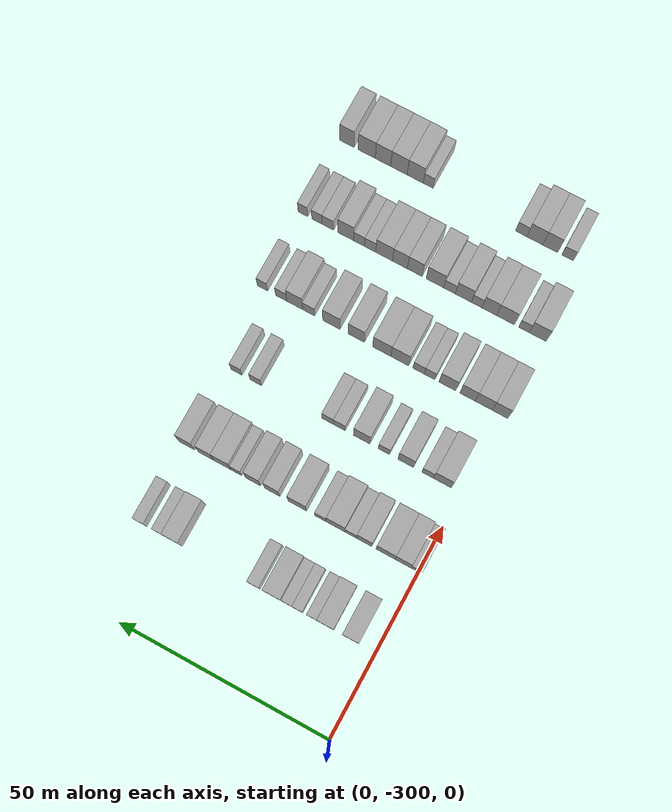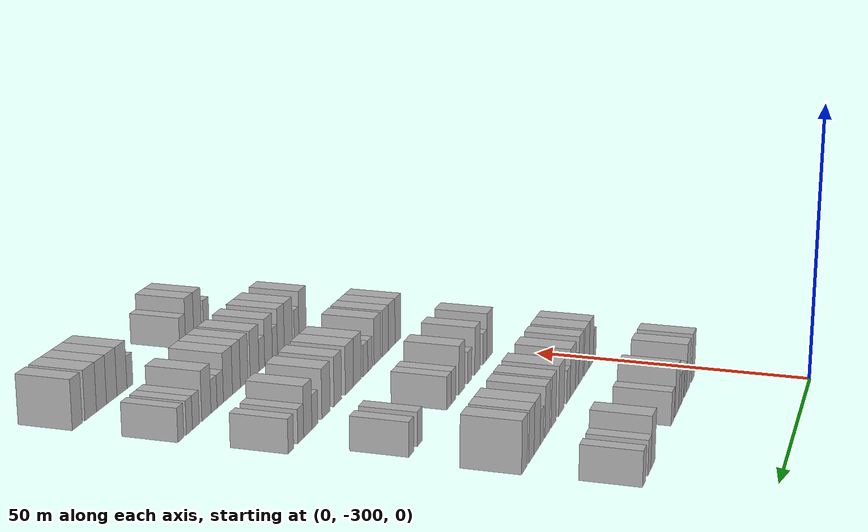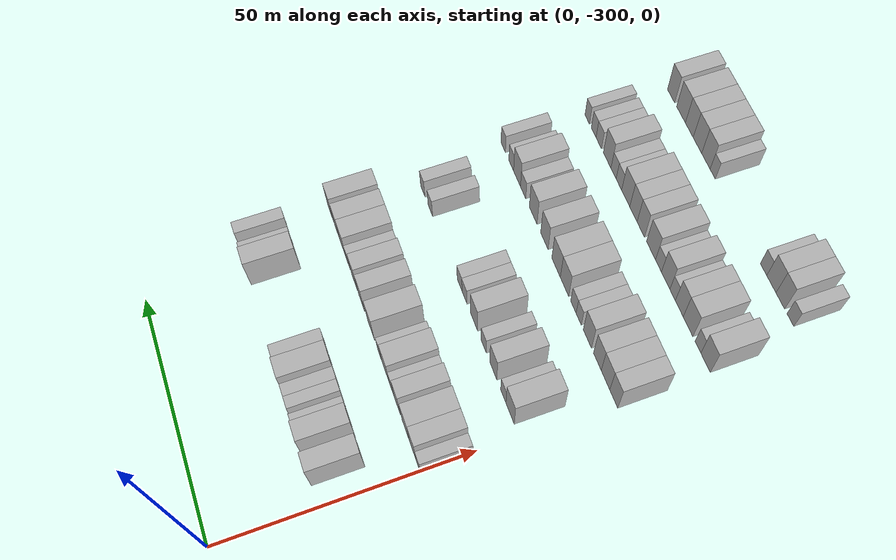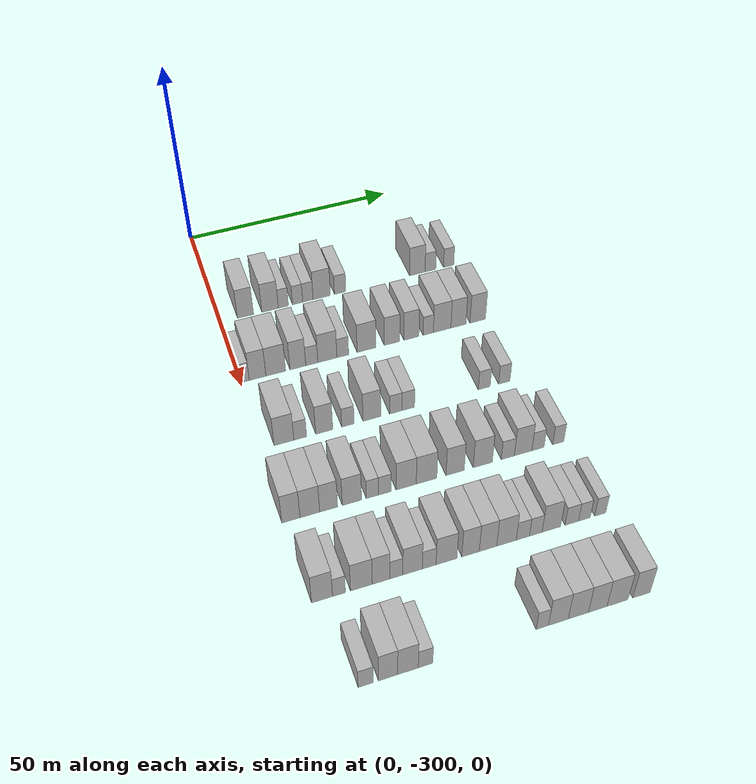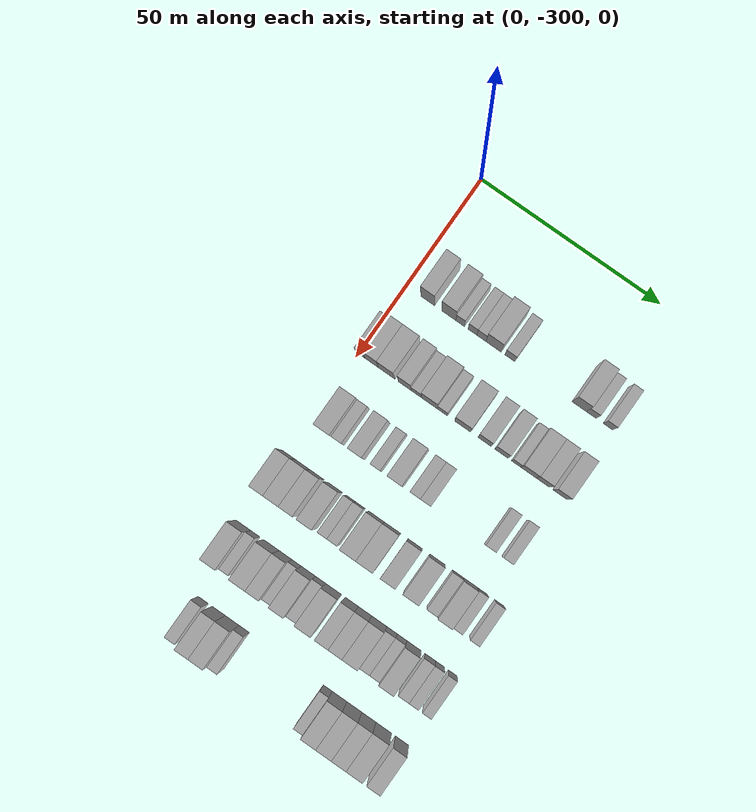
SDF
<sdf version="1.6">
 <world name="default">
  <model name="building_15">
   <static>1</static>
   <pose>25.0000 -294.0188 0 0.000000 0.000000 0.000000</pose>
   <link name="link">
    <pose>0 0 4.50 0 0 0</pose>
    <collision name="collision"><geometry><box><size>10.0000 3.7938 9.0000</size></box></geometry></collision>
    <visual name="visual">
     <cast_shadows>0</cast_shadows>
     <geometry><box><size>10.0000 3.7938 9.0000</size></box></geometry>
     <material>
      <script>
       <uri>model://HANNAS_wall/materials/scripts</uri>
       <uri>model://HANNAS_wall/materials/textures</uri>
       <name>vrc/HANNAS_wall</name>
      </script>
     </material>
    </visual>
   </link>
  </model>
  <model name="building_16">
   <static>1</static>
   <pose>25.0000 -288.1485 0 0.000000 0.000000 0.000000</pose>
   <link name="link">
    <pose>0 0 4.50 0 0 0</pose>
    <collision name="collision"><geometry><box><size>10.0000 3.9466 9.0000</size></box></geometry></collision>
    <visual name="visual">
     <cast_shadows>0</cast_shadows>
     <geometry><box><size>10.0000 3.9466 9.0000</size></box></geometry>
     <material>
      <script>
       <uri>model://HANNAS_wall/materials/scripts</uri>
       <uri>model://HANNAS_wall/materials/textures</uri>
       <name>vrc/HANNAS_wall</name>
      </script>
     </material>
    </visual>
   </link>
  </model>
  <model name="building_17">
   <static>1</static>
   <pose>25.0000 -284.9693 0 0.000000 0.000000 0.000000</pose>
   <link name="link">
    <pose>0 0 3.00 0 0 0</pose>
    <collision name="collision"><geometry><box><size>10.0000 2.4118 6.0000</size></box></geometry></collision>
    <visual name="visual">
     <cast_shadows>0</cast_shadows>
     <geometry><box><size>10.0000 2.4118 6.0000</size></box></geometry>
     <material>
      <script>
       <uri>model://HANNAS_wall/materials/scripts</uri>
       <uri>model://HANNAS_wall/materials/textures</uri>
       <name>vrc/HANNAS_wall</name>
      </script>
     </material>
    </visual>
   </link>
  </model>
  <model name="building_18">
   <static>1</static>
   <pose>25.0000 -281.5322 0 0.000000 0.000000 0.000000</pose>
   <link name="link">
    <pose>0 0 3.00 0 0 0</pose>
    <collision name="collision"><geometry><box><size>10.0000 2.4624 6.0000</size></box></geometry></collision>
    <visual name="visual">
     <cast_shadows>0</cast_shadows>
     <geometry><box><size>10.0000 2.4624 6.0000</size></box></geometry>
     <material>
      <script>
       <uri>model://HANNAS_wall/materials/scripts</uri>
       <uri>model://HANNAS_wall/materials/textures</uri>
       <name>vrc/HANNAS_wall</name>
      </script>
     </material>
    </visual>
   </link>
  </model>
  <model name="building_19">
   <static>1</static>
   <pose>25.0000 -279.0378 0 0.000000 0.000000 0.000000</pose>
   <link name="link">
    <pose>0 0 3.00 0 0 0</pose>
    <collision name="collision"><geometry><box><size>10.0000 2.5264 6.0000</size></box></geometry></collision>
    <visual name="visual">
     <cast_shadows>0</cast_shadows>
     <geometry><box><size>10.0000 2.5264 6.0000</size></box></geometry>
     <material>
      <script>
       <uri>model://HANNAS_wall/materials/scripts</uri>
       <uri>model://HANNAS_wall/materials/textures</uri>
       <name>vrc/HANNAS_wall</name>
      </script>
     </material>
    </visual>
   </link>
  </model>
  <model name="building_20">
   <static>1</static>
   <pose>25.0000 -275.6658 0 0.000000 0.000000 0.000000</pose>
   <link name="link">
    <pose>0 0 4.50 0 0 0</pose>
    <collision name="collision"><geometry><box><size>10.0000 4.2176 9.0000</size></box></geometry></collision>
    <visual name="visual">
     <cast_shadows>0</cast_shadows>
     <geometry><box><size>10.0000 4.2176 9.0000</size></box></geometry>
     <material>
      <script>
       <uri>model://HANNAS_wall/materials/scripts</uri>
       <uri>model://HANNAS_wall/materials/textures</uri>
       <name>vrc/HANNAS_wall</name>
      </script>
     </material>
    </visual>
   </link>
  </model>
  <model name="building_21">
   <static>1</static>
   <pose>25.0000 -271.1557 0 0.000000 0.000000 0.000000</pose>
   <link name="link">
    <pose>0 0 3.00 0 0 0</pose>
    <collision name="collision"><geometry><box><size>10.0000 2.8026 6.0000</size></box></geometry></collision>
    <visual name="visual">
     <cast_shadows>0</cast_shadows>
     <geometry><box><size>10.0000 2.8026 6.0000</size></box></geometry>
     <material>
      <script>
       <uri>model://HANNAS_wall/materials/scripts</uri>
       <uri>model://HANNAS_wall/materials/textures</uri>
       <name>vrc/HANNAS_wall</name>
      </script>
     </material>
    </visual>
   </link>
  </model>
  <model name="building_22">
   <static>1</static>
   <pose>25.0000 -251.8844 0 0.000000 0.000000 0.000000</pose>
   <link name="link">
    <pose>0 0 4.50 0 0 0</pose>
    <collision name="collision"><geometry><box><size>10.0000 3.9133 9.0000</size></box></geometry></collision>
    <visual name="visual">
     <cast_shadows>0</cast_shadows>
     <geometry><box><size>10.0000 3.9133 9.0000</size></box></geometry>
     <material>
      <script>
       <uri>model://HANNAS_wall/materials/scripts</uri>
       <uri>model://HANNAS_wall/materials/textures</uri>
       <name>vrc/HANNAS_wall</name>
      </script>
     </material>
    </visual>
   </link>
  </model>
  <model name="building_23">
   <static>1</static>
   <pose>25.0000 -248.5655 0 0.000000 0.000000 0.000000</pose>
   <link name="link">
    <pose>0 0 3.00 0 0 0</pose>
    <collision name="collision"><geometry><box><size>10.0000 2.7246 6.0000</size></box></geometry></collision>
    <visual name="visual">
     <cast_shadows>0</cast_shadows>
     <geometry><box><size>10.0000 2.7246 6.0000</size></box></geometry>
     <material>
      <script>
       <uri>model://HANNAS_wall/materials/scripts</uri>
       <uri>model://HANNAS_wall/materials/textures</uri>
       <name>vrc/HANNAS_wall</name>
      </script>
     </material>
    </visual>
   </link>
  </model>
  <model name="building_24">
   <static>1</static>
   <pose>25.0000 -243.8959 0 0.000000 0.000000 0.000000</pose>
   <link name="link">
    <pose>0 0 3.00 0 0 0</pose>
    <collision name="collision"><geometry><box><size>10.0000 2.6144 6.0000</size></box></geometry></collision>
    <visual name="visual">
     <cast_shadows>0</cast_shadows>
     <geometry><box><size>10.0000 2.6144 6.0000</size></box></geometry>
     <material>
      <script>
       <uri>model://HANNAS_wall/materials/scripts</uri>
       <uri>model://HANNAS_wall/materials/textures</uri>
       <name>vrc/HANNAS_wall</name>
      </script>
     </material>
    </visual>
   </link>
  </model>
  <model name="building_188">
   <static>1</static>
   <pose>44.0000 -299.3220 0 0.000000 0.000000 0.000000</pose>
   <link name="link">
    <pose>0 0 3.00 0 0 0</pose>
    <collision name="collision"><geometry><box><size>10.0000 2.5006 6.0000</size></box></geometry></collision>
    <visual name="visual">
     <cast_shadows>0</cast_shadows>
     <geometry><box><size>10.0000 2.5006 6.0000</size></box></geometry>
     <material>
      <script>
       <uri>model://HANNAS_wall/materials/scripts</uri>
       <uri>model://HANNAS_wall/materials/textures</uri>
       <name>vrc/HANNAS_wall</name>
      </script>
     </material>
    </visual>
   </link>
  </model>
  <model name="building_189">
   <static>1</static>
   <pose>44.0000 -296.1838 0 0.000000 0.000000 0.000000</pose>
   <link name="link">
    <pose>0 0 4.50 0 0 0</pose>
    <collision name="collision"><geometry><box><size>10.0000 3.7759 9.0000</size></box></geometry></collision>
    <visual name="visual">
     <cast_shadows>0</cast_shadows>
     <geometry><box><size>10.0000 3.7759 9.0000</size></box></geometry>
     <material>
      <script>
       <uri>model://HANNAS_wall/materials/scripts</uri>
       <uri>model://HANNAS_wall/materials/textures</uri>
       <name>vrc/HANNAS_wall</name>
      </script>
     </material>
    </visual>
   </link>
  </model>
  <model name="building_190">
   <static>1</static>
   <pose>44.0000 -292.0547 0 0.000000 0.000000 0.000000</pose>
   <link name="link">
    <pose>0 0 4.50 0 0 0</pose>
    <collision name="collision"><geometry><box><size>10.0000 4.4823 9.0000</size></box></geometry></collision>
    <visual name="visual">
     <cast_shadows>0</cast_shadows>
     <geometry><box><size>10.0000 4.4823 9.0000</size></box></geometry>
     <material>
      <script>
       <uri>model://HANNAS_wall/materials/scripts</uri>
       <uri>model://HANNAS_wall/materials/textures</uri>
       <name>vrc/HANNAS_wall</name>
      </script>
     </material>
    </visual>
   </link>
  </model>
  <model name="building_191">
   <static>1</static>
   <pose>44.0000 -286.9977 0 0.000000 0.000000 0.000000</pose>
   <link name="link">
    <pose>0 0 4.50 0 0 0</pose>
    <collision name="collision"><geometry><box><size>10.0000 3.6317 9.0000</size></box></geometry></collision>
    <visual name="visual">
     <cast_shadows>0</cast_shadows>
     <geometry><box><size>10.0000 3.6317 9.0000</size></box></geometry>
     <material>
      <script>
       <uri>model://HANNAS_wall/materials/scripts</uri>
       <uri>model://HANNAS_wall/materials/textures</uri>
       <name>vrc/HANNAS_wall</name>
      </script>
     </material>
    </visual>
   </link>
  </model>
  <model name="building_192">
   <static>1</static>
   <pose>44.0000 -283.7783 0 0.000000 0.000000 0.000000</pose>
   <link name="link">
    <pose>0 0 3.00 0 0 0</pose>
    <collision name="collision"><geometry><box><size>10.0000 2.8072 6.0000</size></box></geometry></collision>
    <visual name="visual">
     <cast_shadows>0</cast_shadows>
     <geometry><box><size>10.0000 2.8072 6.0000</size></box></geometry>
     <material>
      <script>
       <uri>model://HANNAS_wall/materials/scripts</uri>
       <uri>model://HANNAS_wall/materials/textures</uri>
       <name>vrc/HANNAS_wall</name>
      </script>
     </material>
    </visual>
   </link>
  </model>
  <model name="building_193">
   <static>1</static>
   <pose>44.0000 -280.1509 0 0.000000 0.000000 0.000000</pose>
   <link name="link">
    <pose>0 0 4.50 0 0 0</pose>
    <collision name="collision"><geometry><box><size>10.0000 4.4476 9.0000</size></box></geometry></collision>
    <visual name="visual">
     <cast_shadows>0</cast_shadows>
     <geometry><box><size>10.0000 4.4476 9.0000</size></box></geometry>
     <material>
      <script>
       <uri>model://HANNAS_wall/materials/scripts</uri>
       <uri>model://HANNAS_wall/materials/textures</uri>
       <name>vrc/HANNAS_wall</name>
      </script>
     </material>
    </visual>
   </link>
  </model>
  <model name="building_194">
   <static>1</static>
   <pose>44.0000 -276.5585 0 0.000000 0.000000 0.000000</pose>
   <link name="link">
    <pose>0 0 3.00 0 0 0</pose>
    <collision name="collision"><geometry><box><size>10.0000 2.7372 6.0000</size></box></geometry></collision>
    <visual name="visual">
     <cast_shadows>0</cast_shadows>
     <geometry><box><size>10.0000 2.7372 6.0000</size></box></geometry>
     <material>
      <script>
       <uri>model://HANNAS_wall/materials/scripts</uri>
       <uri>model://HANNAS_wall/materials/textures</uri>
       <name>vrc/HANNAS_wall</name>
      </script>
     </material>
    </visual>
   </link>
  </model>
  <model name="building_195">
   <static>1</static>
   <pose>44.0000 -270.9673 0 0.000000 0.000000 0.000000</pose>
   <link name="link">
    <pose>0 0 4.50 0 0 0</pose>
    <collision name="collision"><geometry><box><size>10.0000 4.4451 9.0000</size></box></geometry></collision>
    <visual name="visual">
     <cast_shadows>0</cast_shadows>
     <geometry><box><size>10.0000 4.4451 9.0000</size></box></geometry>
     <material>
      <script>
       <uri>model://HANNAS_wall/materials/scripts</uri>
       <uri>model://HANNAS_wall/materials/textures</uri>
       <name>vrc/HANNAS_wall</name>
      </script>
     </material>
    </visual>
   </link>
  </model>
  <model name="building_196">
   <static>1</static>
   <pose>44.0000 -264.9062 0 0.000000 0.000000 0.000000</pose>
   <link name="link">
    <pose>0 0 4.50 0 0 0</pose>
    <collision name="collision"><geometry><box><size>10.0000 3.6771 9.0000</size></box></geometry></collision>
    <visual name="visual">
     <cast_shadows>0</cast_shadows>
     <geometry><box><size>10.0000 3.6771 9.0000</size></box></geometry>
     <material>
      <script>
       <uri>model://HANNAS_wall/materials/scripts</uri>
       <uri>model://HANNAS_wall/materials/textures</uri>
       <name>vrc/HANNAS_wall</name>
      </script>
     </material>
    </visual>
   </link>
  </model>
  <model name="building_197">
   <static>1</static>
   <pose>44.0000 -260.2516 0 0.000000 0.000000 0.000000</pose>
   <link name="link">
    <pose>0 0 4.50 0 0 0</pose>
    <collision name="collision"><geometry><box><size>10.0000 3.6321 9.0000</size></box></geometry></collision>
    <visual name="visual">
     <cast_shadows>0</cast_shadows>
     <geometry><box><size>10.0000 3.6321 9.0000</size></box></geometry>
     <material>
      <script>
       <uri>model://HANNAS_wall/materials/scripts</uri>
       <uri>model://HANNAS_wall/materials/textures</uri>
       <name>vrc/HANNAS_wall</name>
      </script>
     </material>
    </visual>
   </link>
  </model>
  <model name="building_198">
   <static>1</static>
   <pose>44.0000 -256.1866 0 0.000000 0.000000 0.000000</pose>
   <link name="link">
    <pose>0 0 3.00 0 0 0</pose>
    <collision name="collision"><geometry><box><size>10.0000 2.4979 6.0000</size></box></geometry></collision>
    <visual name="visual">
     <cast_shadows>0</cast_shadows>
     <geometry><box><size>10.0000 2.4979 6.0000</size></box></geometry>
     <material>
      <script>
       <uri>model://HANNAS_wall/materials/scripts</uri>
       <uri>model://HANNAS_wall/materials/textures</uri>
       <name>vrc/HANNAS_wall</name>
      </script>
     </material>
    </visual>
   </link>
  </model>
  <model name="building_199">
   <static>1</static>
   <pose>44.0000 -252.8082 0 0.000000 0.000000 0.000000</pose>
   <link name="link">
    <pose>0 0 4.50 0 0 0</pose>
    <collision name="collision"><geometry><box><size>10.0000 4.2589 9.0000</size></box></geometry></collision>
    <visual name="visual">
     <cast_shadows>0</cast_shadows>
     <geometry><box><size>10.0000 4.2589 9.0000</size></box></geometry>
     <material>
      <script>
       <uri>model://HANNAS_wall/materials/scripts</uri>
       <uri>model://HANNAS_wall/materials/textures</uri>
       <name>vrc/HANNAS_wall</name>
      </script>
     </material>
    </visual>
   </link>
  </model>
  <model name="building_200">
   <static>1</static>
   <pose>44.0000 -248.8324 0 0.000000 0.000000 0.000000</pose>
   <link name="link">
    <pose>0 0 4.50 0 0 0</pose>
    <collision name="collision"><geometry><box><size>10.0000 3.6927 9.0000</size></box></geometry></collision>
    <visual name="visual">
     <cast_shadows>0</cast_shadows>
     <geometry><box><size>10.0000 3.6927 9.0000</size></box></geometry>
     <material>
      <script>
       <uri>model://HANNAS_wall/materials/scripts</uri>
       <uri>model://HANNAS_wall/materials/textures</uri>
       <name>vrc/HANNAS_wall</name>
      </script>
     </material>
    </visual>
   </link>
  </model>
  <model name="building_201">
   <static>1</static>
   <pose>44.0000 -244.0832 0 0.000000 0.000000 0.000000</pose>
   <link name="link">
    <pose>0 0 4.50 0 0 0</pose>
    <collision name="collision"><geometry><box><size>10.0000 3.8056 9.0000</size></box></geometry></collision>
    <visual name="visual">
     <cast_shadows>0</cast_shadows>
     <geometry><box><size>10.0000 3.8056 9.0000</size></box></geometry>
     <material>
      <script>
       <uri>model://HANNAS_wall/materials/scripts</uri>
       <uri>model://HANNAS_wall/materials/textures</uri>
       <name>vrc/HANNAS_wall</name>
      </script>
     </material>
    </visual>
   </link>
  </model>
  <model name="building_361">
   <static>1</static>
   <pose>63.0000 -295.5406 0 0.000000 0.000000 0.000000</pose>
   <link name="link">
    <pose>0 0 4.50 0 0 0</pose>
    <collision name="collision"><geometry><box><size>10.0000 4.2909 9.0000</size></box></geometry></collision>
    <visual name="visual">
     <cast_shadows>0</cast_shadows>
     <geometry><box><size>10.0000 4.2909 9.0000</size></box></geometry>
     <material>
      <script>
       <uri>model://HANNAS_wall/materials/scripts</uri>
       <uri>model://HANNAS_wall/materials/textures</uri>
       <name>vrc/HANNAS_wall</name>
      </script>
     </material>
    </visual>
   </link>
  </model>
  <model name="building_362">
   <static>1</static>
   <pose>63.0000 -291.9986 0 0.000000 0.000000 0.000000</pose>
   <link name="link">
    <pose>0 0 3.00 0 0 0</pose>
    <collision name="collision"><geometry><box><size>10.0000 2.7932 6.0000</size></box></geometry></collision>
    <visual name="visual">
     <cast_shadows>0</cast_shadows>
     <geometry><box><size>10.0000 2.7932 6.0000</size></box></geometry>
     <material>
      <script>
       <uri>model://HANNAS_wall/materials/scripts</uri>
       <uri>model://HANNAS_wall/materials/textures</uri>
       <name>vrc/HANNAS_wall</name>
      </script>
     </material>
    </visual>
   </link>
  </model>
  <model name="building_363">
   <static>1</static>
   <pose>63.0000 -286.7206 0 0.000000 0.000000 0.000000</pose>
   <link name="link">
    <pose>0 0 4.50 0 0 0</pose>
    <collision name="collision"><geometry><box><size>10.0000 3.7629 9.0000</size></box></geometry></collision>
    <visual name="visual">
     <cast_shadows>0</cast_shadows>
     <geometry><box><size>10.0000 3.7629 9.0000</size></box></geometry>
     <material>
      <script>
       <uri>model://HANNAS_wall/materials/scripts</uri>
       <uri>model://HANNAS_wall/materials/textures</uri>
       <name>vrc/HANNAS_wall</name>
      </script>
     </material>
    </visual>
   </link>
  </model>
  <model name="building_364">
   <static>1</static>
   <pose>63.0000 -281.4617 0 0.000000 0.000000 0.000000</pose>
   <link name="link">
    <pose>0 0 3.00 0 0 0</pose>
    <collision name="collision"><geometry><box><size>10.0000 2.7549 6.0000</size></box></geometry></collision>
    <visual name="visual">
     <cast_shadows>0</cast_shadows>
     <geometry><box><size>10.0000 2.7549 6.0000</size></box></geometry>
     <material>
      <script>
       <uri>model://HANNAS_wall/materials/scripts</uri>
       <uri>model://HANNAS_wall/materials/textures</uri>
       <name>vrc/HANNAS_wall</name>
      </script>
     </material>
    </visual>
   </link>
  </model>
  <model name="building_365">
   <static>1</static>
   <pose>63.0000 -276.0944 0 0.000000 0.000000 0.000000</pose>
   <link name="link">
    <pose>0 0 4.50 0 0 0</pose>
    <collision name="collision"><geometry><box><size>10.0000 3.9798 9.0000</size></box></geometry></collision>
    <visual name="visual">
     <cast_shadows>0</cast_shadows>
     <geometry><box><size>10.0000 3.9798 9.0000</size></box></geometry>
     <material>
      <script>
       <uri>model://HANNAS_wall/materials/scripts</uri>
       <uri>model://HANNAS_wall/materials/textures</uri>
       <name>vrc/HANNAS_wall</name>
      </script>
     </material>
    </visual>
   </link>
  </model>
  <model name="building_366">
   <static>1</static>
   <pose>63.0000 -270.6776 0 0.000000 0.000000 0.000000</pose>
   <link name="link">
    <pose>0 0 3.00 0 0 0</pose>
    <collision name="collision"><geometry><box><size>10.0000 2.8538 6.0000</size></box></geometry></collision>
    <visual name="visual">
     <cast_shadows>0</cast_shadows>
     <geometry><box><size>10.0000 2.8538 6.0000</size></box></geometry>
     <material>
      <script>
       <uri>model://HANNAS_wall/materials/scripts</uri>
       <uri>model://HANNAS_wall/materials/textures</uri>
       <name>vrc/HANNAS_wall</name>
      </script>
     </material>
    </visual>
   </link>
  </model>
  <model name="building_367">
   <static>1</static>
   <pose>63.0000 -267.8411 0 0.000000 0.000000 0.000000</pose>
   <link name="link">
    <pose>0 0 3.00 0 0 0</pose>
    <collision name="collision"><geometry><box><size>10.0000 2.8191 6.0000</size></box></geometry></collision>
    <visual name="visual">
     <cast_shadows>0</cast_shadows>
     <geometry><box><size>10.0000 2.8191 6.0000</size></box></geometry>
     <material>
      <script>
       <uri>model://HANNAS_wall/materials/scripts</uri>
       <uri>model://HANNAS_wall/materials/textures</uri>
       <name>vrc/HANNAS_wall</name>
      </script>
     </material>
    </visual>
   </link>
  </model>
  <model name="building_368">
   <static>1</static>
   <pose>63.0000 -250.2404 0 0.000000 0.000000 0.000000</pose>
   <link name="link">
    <pose>0 0 3.00 0 0 0</pose>
    <collision name="collision"><geometry><box><size>10.0000 2.7941 6.0000</size></box></geometry></collision>
    <visual name="visual">
     <cast_shadows>0</cast_shadows>
     <geometry><box><size>10.0000 2.7941 6.0000</size></box></geometry>
     <material>
      <script>
       <uri>model://HANNAS_wall/materials/scripts</uri>
       <uri>model://HANNAS_wall/materials/textures</uri>
       <name>vrc/HANNAS_wall</name>
      </script>
     </material>
    </visual>
   </link>
  </model>
  <model name="building_369">
   <static>1</static>
   <pose>63.0000 -245.5012 0 0.000000 0.000000 0.000000</pose>
   <link name="link">
    <pose>0 0 3.00 0 0 0</pose>
    <collision name="collision"><geometry><box><size>10.0000 2.6842 6.0000</size></box></geometry></collision>
    <visual name="visual">
     <cast_shadows>0</cast_shadows>
     <geometry><box><size>10.0000 2.6842 6.0000</size></box></geometry>
     <material>
      <script>
       <uri>model://HANNAS_wall/materials/scripts</uri>
       <uri>model://HANNAS_wall/materials/textures</uri>
       <name>vrc/HANNAS_wall</name>
      </script>
     </material>
    </visual>
   </link>
  </model>
  <model name="building_537">
   <static>1</static>
   <pose>82.0000 -299.4788 0 0.000000 0.000000 0.000000</pose>
   <link name="link">
    <pose>0 0 4.50 0 0 0</pose>
    <collision name="collision"><geometry><box><size>10.0000 3.7541 9.0000</size></box></geometry></collision>
    <visual name="visual">
     <cast_shadows>0</cast_shadows>
     <geometry><box><size>10.0000 3.7541 9.0000</size></box></geometry>
     <material>
      <script>
       <uri>model://HANNAS_wall/materials/scripts</uri>
       <uri>model://HANNAS_wall/materials/textures</uri>
       <name>vrc/HANNAS_wall</name>
      </script>
     </material>
    </visual>
   </link>
  </model>
  <model name="building_538">
   <static>1</static>
   <pose>82.0000 -295.5509 0 0.000000 0.000000 0.000000</pose>
   <link name="link">
    <pose>0 0 4.50 0 0 0</pose>
    <collision name="collision"><geometry><box><size>10.0000 4.1016 9.0000</size></box></geometry></collision>
    <visual name="visual">
     <cast_shadows>0</cast_shadows>
     <geometry><box><size>10.0000 4.1016 9.0000</size></box></geometry>
     <material>
      <script>
       <uri>model://HANNAS_wall/materials/scripts</uri>
       <uri>model://HANNAS_wall/materials/textures</uri>
       <name>vrc/HANNAS_wall</name>
      </script>
     </material>
    </visual>
   </link>
  </model>
  <model name="building_539">
   <static>1</static>
   <pose>82.0000 -291.6279 0 0.000000 0.000000 0.000000</pose>
   <link name="link">
    <pose>0 0 4.50 0 0 0</pose>
    <collision name="collision"><geometry><box><size>10.0000 3.7443 9.0000</size></box></geometry></collision>
    <visual name="visual">
     <cast_shadows>0</cast_shadows>
     <geometry><box><size>10.0000 3.7443 9.0000</size></box></geometry>
     <material>
      <script>
       <uri>model://HANNAS_wall/materials/scripts</uri>
       <uri>model://HANNAS_wall/materials/textures</uri>
       <name>vrc/HANNAS_wall</name>
      </script>
     </material>
    </visual>
   </link>
  </model>
  <model name="building_540">
   <static>1</static>
   <pose>82.0000 -286.7246 0 0.000000 0.000000 0.000000</pose>
   <link name="link">
    <pose>0 0 4.50 0 0 0</pose>
    <collision name="collision"><geometry><box><size>10.0000 4.0623 9.0000</size></box></geometry></collision>
    <visual name="visual">
     <cast_shadows>0</cast_shadows>
     <geometry><box><size>10.0000 4.0623 9.0000</size></box></geometry>
     <material>
      <script>
       <uri>model://HANNAS_wall/materials/scripts</uri>
       <uri>model://HANNAS_wall/materials/textures</uri>
       <name>vrc/HANNAS_wall</name>
      </script>
     </material>
    </visual>
   </link>
  </model>
  <model name="building_541">
   <static>1</static>
   <pose>82.0000 -282.3933 0 0.000000 0.000000 0.000000</pose>
   <link name="link">
    <pose>0 0 3.00 0 0 0</pose>
    <collision name="collision"><geometry><box><size>10.0000 2.6002 6.0000</size></box></geometry></collision>
    <visual name="visual">
     <cast_shadows>0</cast_shadows>
     <geometry><box><size>10.0000 2.6002 6.0000</size></box></geometry>
     <material>
      <script>
       <uri>model://HANNAS_wall/materials/scripts</uri>
       <uri>model://HANNAS_wall/materials/textures</uri>
       <name>vrc/HANNAS_wall</name>
      </script>
     </material>
    </visual>
   </link>
  </model>
  <model name="building_542">
   <static>1</static>
   <pose>82.0000 -279.7067 0 0.000000 0.000000 0.000000</pose>
   <link name="link">
    <pose>0 0 3.00 0 0 0</pose>
    <collision name="collision"><geometry><box><size>10.0000 2.7730 6.0000</size></box></geometry></collision>
    <visual name="visual">
     <cast_shadows>0</cast_shadows>
     <geometry><box><size>10.0000 2.7730 6.0000</size></box></geometry>
     <material>
      <script>
       <uri>model://HANNAS_wall/materials/scripts</uri>
       <uri>model://HANNAS_wall/materials/textures</uri>
       <name>vrc/HANNAS_wall</name>
      </script>
     </material>
    </visual>
   </link>
  </model>
  <model name="building_543">
   <static>1</static>
   <pose>82.0000 -275.1412 0 0.000000 0.000000 0.000000</pose>
   <link name="link">
    <pose>0 0 4.50 0 0 0</pose>
    <collision name="collision"><geometry><box><size>10.0000 4.3580 9.0000</size></box></geometry></collision>
    <visual name="visual">
     <cast_shadows>0</cast_shadows>
     <geometry><box><size>10.0000 4.3580 9.0000</size></box></geometry>
     <material>
      <script>
       <uri>model://HANNAS_wall/materials/scripts</uri>
       <uri>model://HANNAS_wall/materials/textures</uri>
       <name>vrc/HANNAS_wall</name>
      </script>
     </material>
    </visual>
   </link>
  </model>
  <model name="building_544">
   <static>1</static>
   <pose>82.0000 -270.7193 0 0.000000 0.000000 0.000000</pose>
   <link name="link">
    <pose>0 0 4.50 0 0 0</pose>
    <collision name="collision"><geometry><box><size>10.0000 4.4858 9.0000</size></box></geometry></collision>
    <visual name="visual">
     <cast_shadows>0</cast_shadows>
     <geometry><box><size>10.0000 4.4858 9.0000</size></box></geometry>
     <material>
      <script>
       <uri>model://HANNAS_wall/materials/scripts</uri>
       <uri>model://HANNAS_wall/materials/textures</uri>
       <name>vrc/HANNAS_wall</name>
      </script>
     </material>
    </visual>
   </link>
  </model>
  <model name="building_545">
   <static>1</static>
   <pose>82.0000 -264.4731 0 0.000000 0.000000 0.000000</pose>
   <link name="link">
    <pose>0 0 4.50 0 0 0</pose>
    <collision name="collision"><geometry><box><size>10.0000 4.0065 9.0000</size></box></geometry></collision>
    <visual name="visual">
     <cast_shadows>0</cast_shadows>
     <geometry><box><size>10.0000 4.0065 9.0000</size></box></geometry>
     <material>
      <script>
       <uri>model://HANNAS_wall/materials/scripts</uri>
       <uri>model://HANNAS_wall/materials/textures</uri>
       <name>vrc/HANNAS_wall</name>
      </script>
     </material>
    </visual>
   </link>
  </model>
  <model name="building_546">
   <static>1</static>
   <pose>82.0000 -258.3390 0 0.000000 0.000000 0.000000</pose>
   <link name="link">
    <pose>0 0 4.50 0 0 0</pose>
    <collision name="collision"><geometry><box><size>10.0000 4.2617 9.0000</size></box></geometry></collision>
    <visual name="visual">
     <cast_shadows>0</cast_shadows>
     <geometry><box><size>10.0000 4.2617 9.0000</size></box></geometry>
     <material>
      <script>
       <uri>model://HANNAS_wall/materials/scripts</uri>
       <uri>model://HANNAS_wall/materials/textures</uri>
       <name>vrc/HANNAS_wall</name>
      </script>
     </material>
    </visual>
   </link>
  </model>
  <model name="building_547">
   <static>1</static>
   <pose>82.0000 -252.7329 0 0.000000 0.000000 0.000000</pose>
   <link name="link">
    <pose>0 0 3.00 0 0 0</pose>
    <collision name="collision"><geometry><box><size>10.0000 2.9504 6.0000</size></box></geometry></collision>
    <visual name="visual">
     <cast_shadows>0</cast_shadows>
     <geometry><box><size>10.0000 2.9504 6.0000</size></box></geometry>
     <material>
      <script>
       <uri>model://HANNAS_wall/materials/scripts</uri>
       <uri>model://HANNAS_wall/materials/textures</uri>
       <name>vrc/HANNAS_wall</name>
      </script>
     </material>
    </visual>
   </link>
  </model>
  <model name="building_548">
   <static>1</static>
   <pose>82.0000 -249.2766 0 0.000000 0.000000 0.000000</pose>
   <link name="link">
    <pose>0 0 4.50 0 0 0</pose>
    <collision name="collision"><geometry><box><size>10.0000 3.9623 9.0000</size></box></geometry></collision>
    <visual name="visual">
     <cast_shadows>0</cast_shadows>
     <geometry><box><size>10.0000 3.9623 9.0000</size></box></geometry>
     <material>
      <script>
       <uri>model://HANNAS_wall/materials/scripts</uri>
       <uri>model://HANNAS_wall/materials/textures</uri>
       <name>vrc/HANNAS_wall</name>
      </script>
     </material>
    </visual>
   </link>
  </model>
  <model name="building_549">
   <static>1</static>
   <pose>82.0000 -245.9116 0 0.000000 0.000000 0.000000</pose>
   <link name="link">
    <pose>0 0 3.00 0 0 0</pose>
    <collision name="collision"><geometry><box><size>10.0000 2.7676 6.0000</size></box></geometry></collision>
    <visual name="visual">
     <cast_shadows>0</cast_shadows>
     <geometry><box><size>10.0000 2.7676 6.0000</size></box></geometry>
     <material>
      <script>
       <uri>model://HANNAS_wall/materials/scripts</uri>
       <uri>model://HANNAS_wall/materials/textures</uri>
       <name>vrc/HANNAS_wall</name>
      </script>
     </material>
    </visual>
   </link>
  </model>
  <model name="building_550">
   <static>1</static>
   <pose>82.0000 -241.2596 0 0.000000 0.000000 0.000000</pose>
   <link name="link">
    <pose>0 0 3.00 0 0 0</pose>
    <collision name="collision"><geometry><box><size>10.0000 2.5365 6.0000</size></box></geometry></collision>
    <visual name="visual">
     <cast_shadows>0</cast_shadows>
     <geometry><box><size>10.0000 2.5365 6.0000</size></box></geometry>
     <material>
      <script>
       <uri>model://HANNAS_wall/materials/scripts</uri>
       <uri>model://HANNAS_wall/materials/textures</uri>
       <name>vrc/HANNAS_wall</name>
      </script>
     </material>
    </visual>
   </link>
  </model>
  <model name="building_705">
   <static>1</static>
   <pose>101.0000 -298.8002 0 0.000000 0.000000 0.000000</pose>
   <link name="link">
    <pose>0 0 4.50 0 0 0</pose>
    <collision name="collision"><geometry><box><size>10.0000 4.1467 9.0000</size></box></geometry></collision>
    <visual name="visual">
     <cast_shadows>0</cast_shadows>
     <geometry><box><size>10.0000 4.1467 9.0000</size></box></geometry>
     <material>
      <script>
       <uri>model://HANNAS_wall/materials/scripts</uri>
       <uri>model://HANNAS_wall/materials/textures</uri>
       <name>vrc/HANNAS_wall</name>
      </script>
     </material>
    </visual>
   </link>
  </model>
  <model name="building_706">
   <static>1</static>
   <pose>101.0000 -295.4526 0 0.000000 0.000000 0.000000</pose>
   <link name="link">
    <pose>0 0 3.00 0 0 0</pose>
    <collision name="collision"><geometry><box><size>10.0000 2.5484 6.0000</size></box></geometry></collision>
    <visual name="visual">
     <cast_shadows>0</cast_shadows>
     <geometry><box><size>10.0000 2.5484 6.0000</size></box></geometry>
     <material>
      <script>
       <uri>model://HANNAS_wall/materials/scripts</uri>
       <uri>model://HANNAS_wall/materials/textures</uri>
       <name>vrc/HANNAS_wall</name>
      </script>
     </material>
    </visual>
   </link>
  </model>
  <model name="building_707">
   <static>1</static>
   <pose>101.0000 -290.9984 0 0.000000 0.000000 0.000000</pose>
   <link name="link">
    <pose>0 0 4.50 0 0 0</pose>
    <collision name="collision"><geometry><box><size>10.0000 4.3600 9.0000</size></box></geometry></collision>
    <visual name="visual">
     <cast_shadows>0</cast_shadows>
     <geometry><box><size>10.0000 4.3600 9.0000</size></box></geometry>
     <material>
      <script>
       <uri>model://HANNAS_wall/materials/scripts</uri>
       <uri>model://HANNAS_wall/materials/textures</uri>
       <name>vrc/HANNAS_wall</name>
      </script>
     </material>
    </visual>
   </link>
  </model>
  <model name="building_708">
   <static>1</static>
   <pose>101.0000 -287.0140 0 0.000000 0.000000 0.000000</pose>
   <link name="link">
    <pose>0 0 4.50 0 0 0</pose>
    <collision name="collision"><geometry><box><size>10.0000 3.6088 9.0000</size></box></geometry></collision>
    <visual name="visual">
     <cast_shadows>0</cast_shadows>
     <geometry><box><size>10.0000 3.6088 9.0000</size></box></geometry>
     <material>
      <script>
       <uri>model://HANNAS_wall/materials/scripts</uri>
       <uri>model://HANNAS_wall/materials/textures</uri>
       <name>vrc/HANNAS_wall</name>
      </script>
     </material>
    </visual>
   </link>
  </model>
  <model name="building_709">
   <static>1</static>
   <pose>101.0000 -283.9289 0 0.000000 0.000000 0.000000</pose>
   <link name="link">
    <pose>0 0 3.00 0 0 0</pose>
    <collision name="collision"><geometry><box><size>10.0000 2.5613 6.0000</size></box></geometry></collision>
    <visual name="visual">
     <cast_shadows>0</cast_shadows>
     <geometry><box><size>10.0000 2.5613 6.0000</size></box></geometry>
     <material>
      <script>
       <uri>model://HANNAS_wall/materials/scripts</uri>
       <uri>model://HANNAS_wall/materials/textures</uri>
       <name>vrc/HANNAS_wall</name>
      </script>
     </material>
    </visual>
   </link>
  </model>
  <model name="building_710">
   <static>1</static>
   <pose>101.0000 -280.6585 0 0.000000 0.000000 0.000000</pose>
   <link name="link">
    <pose>0 0 4.50 0 0 0</pose>
    <collision name="collision"><geometry><box><size>10.0000 3.9796 9.0000</size></box></geometry></collision>
    <visual name="visual">
     <cast_shadows>0</cast_shadows>
     <geometry><box><size>10.0000 3.9796 9.0000</size></box></geometry>
     <material>
      <script>
       <uri>model://HANNAS_wall/materials/scripts</uri>
       <uri>model://HANNAS_wall/materials/textures</uri>
       <name>vrc/HANNAS_wall</name>
      </script>
     </material>
    </visual>
   </link>
  </model>
  <model name="building_711">
   <static>1</static>
   <pose>101.0000 -277.2539 0 0.000000 0.000000 0.000000</pose>
   <link name="link">
    <pose>0 0 3.00 0 0 0</pose>
    <collision name="collision"><geometry><box><size>10.0000 2.8296 6.0000</size></box></geometry></collision>
    <visual name="visual">
     <cast_shadows>0</cast_shadows>
     <geometry><box><size>10.0000 2.8296 6.0000</size></box></geometry>
     <material>
      <script>
       <uri>model://HANNAS_wall/materials/scripts</uri>
       <uri>model://HANNAS_wall/materials/textures</uri>
       <name>vrc/HANNAS_wall</name>
      </script>
     </material>
    </visual>
   </link>
  </model>
  <model name="building_712">
   <static>1</static>
   <pose>101.0000 -273.6663 0 0.000000 0.000000 0.000000</pose>
   <link name="link">
    <pose>0 0 4.50 0 0 0</pose>
    <collision name="collision"><geometry><box><size>10.0000 4.3454 9.0000</size></box></geometry></collision>
    <visual name="visual">
     <cast_shadows>0</cast_shadows>
     <geometry><box><size>10.0000 4.3454 9.0000</size></box></geometry>
     <material>
      <script>
       <uri>model://HANNAS_wall/materials/scripts</uri>
       <uri>model://HANNAS_wall/materials/textures</uri>
       <name>vrc/HANNAS_wall</name>
      </script>
     </material>
    </visual>
   </link>
  </model>
  <model name="building_713">
   <static>1</static>
   <pose>101.0000 -268.6636 0 0.000000 0.000000 0.000000</pose>
   <link name="link">
    <pose>0 0 4.50 0 0 0</pose>
    <collision name="collision"><geometry><box><size>10.0000 3.6601 9.0000</size></box></geometry></collision>
    <visual name="visual">
     <cast_shadows>0</cast_shadows>
     <geometry><box><size>10.0000 3.6601 9.0000</size></box></geometry>
     <material>
      <script>
       <uri>model://HANNAS_wall/materials/scripts</uri>
       <uri>model://HANNAS_wall/materials/textures</uri>
       <name>vrc/HANNAS_wall</name>
      </script>
     </material>
    </visual>
   </link>
  </model>
  <model name="building_714">
   <static>1</static>
   <pose>101.0000 -264.9961 0 0.000000 0.000000 0.000000</pose>
   <link name="link">
    <pose>0 0 4.50 0 0 0</pose>
    <collision name="collision"><geometry><box><size>10.0000 3.6748 9.0000</size></box></geometry></collision>
    <visual name="visual">
     <cast_shadows>0</cast_shadows>
     <geometry><box><size>10.0000 3.6748 9.0000</size></box></geometry>
     <material>
      <script>
       <uri>model://HANNAS_wall/materials/scripts</uri>
       <uri>model://HANNAS_wall/materials/textures</uri>
       <name>vrc/HANNAS_wall</name>
      </script>
     </material>
    </visual>
   </link>
  </model>
  <model name="building_715">
   <static>1</static>
   <pose>101.0000 -261.0872 0 0.000000 0.000000 0.000000</pose>
   <link name="link">
    <pose>0 0 4.50 0 0 0</pose>
    <collision name="collision"><geometry><box><size>10.0000 4.1430 9.0000</size></box></geometry></collision>
    <visual name="visual">
     <cast_shadows>0</cast_shadows>
     <geometry><box><size>10.0000 4.1430 9.0000</size></box></geometry>
     <material>
      <script>
       <uri>model://HANNAS_wall/materials/scripts</uri>
       <uri>model://HANNAS_wall/materials/textures</uri>
       <name>vrc/HANNAS_wall</name>
      </script>
     </material>
    </visual>
   </link>
  </model>
  <model name="building_716">
   <static>1</static>
   <pose>101.0000 -257.5974 0 0.000000 0.000000 0.000000</pose>
   <link name="link">
    <pose>0 0 3.00 0 0 0</pose>
    <collision name="collision"><geometry><box><size>10.0000 2.8367 6.0000</size></box></geometry></collision>
    <visual name="visual">
     <cast_shadows>0</cast_shadows>
     <geometry><box><size>10.0000 2.8367 6.0000</size></box></geometry>
     <material>
      <script>
       <uri>model://HANNAS_wall/materials/scripts</uri>
       <uri>model://HANNAS_wall/materials/textures</uri>
       <name>vrc/HANNAS_wall</name>
      </script>
     </material>
    </visual>
   </link>
  </model>
  <model name="building_717">
   <static>1</static>
   <pose>101.0000 -254.8329 0 0.000000 0.000000 0.000000</pose>
   <link name="link">
    <pose>0 0 3.00 0 0 0</pose>
    <collision name="collision"><geometry><box><size>10.0000 2.6923 6.0000</size></box></geometry></collision>
    <visual name="visual">
     <cast_shadows>0</cast_shadows>
     <geometry><box><size>10.0000 2.6923 6.0000</size></box></geometry>
     <material>
      <script>
       <uri>model://HANNAS_wall/materials/scripts</uri>
       <uri>model://HANNAS_wall/materials/textures</uri>
       <name>vrc/HANNAS_wall</name>
      </script>
     </material>
    </visual>
   </link>
  </model>
  <model name="building_718">
   <static>1</static>
   <pose>101.0000 -251.4904 0 0.000000 0.000000 0.000000</pose>
   <link name="link">
    <pose>0 0 4.50 0 0 0</pose>
    <collision name="collision"><geometry><box><size>10.0000 3.9927 9.0000</size></box></geometry></collision>
    <visual name="visual">
     <cast_shadows>0</cast_shadows>
     <geometry><box><size>10.0000 3.9927 9.0000</size></box></geometry>
     <material>
      <script>
       <uri>model://HANNAS_wall/materials/scripts</uri>
       <uri>model://HANNAS_wall/materials/textures</uri>
       <name>vrc/HANNAS_wall</name>
      </script>
     </material>
    </visual>
   </link>
  </model>
  <model name="building_719">
   <static>1</static>
   <pose>101.0000 -247.0326 0 0.000000 0.000000 0.000000</pose>
   <link name="link">
    <pose>0 0 3.00 0 0 0</pose>
    <collision name="collision"><geometry><box><size>10.0000 2.9228 6.0000</size></box></geometry></collision>
    <visual name="visual">
     <cast_shadows>0</cast_shadows>
     <geometry><box><size>10.0000 2.9228 6.0000</size></box></geometry>
     <material>
      <script>
       <uri>model://HANNAS_wall/materials/scripts</uri>
       <uri>model://HANNAS_wall/materials/textures</uri>
       <name>vrc/HANNAS_wall</name>
      </script>
     </material>
    </visual>
   </link>
  </model>
  <model name="building_720">
   <static>1</static>
   <pose>101.0000 -244.2903 0 0.000000 0.000000 0.000000</pose>
   <link name="link">
    <pose>0 0 3.00 0 0 0</pose>
    <collision name="collision"><geometry><box><size>10.0000 2.5619 6.0000</size></box></geometry></collision>
    <visual name="visual">
     <cast_shadows>0</cast_shadows>
     <geometry><box><size>10.0000 2.5619 6.0000</size></box></geometry>
     <material>
      <script>
       <uri>model://HANNAS_wall/materials/scripts</uri>
       <uri>model://HANNAS_wall/materials/textures</uri>
       <name>vrc/HANNAS_wall</name>
      </script>
     </material>
    </visual>
   </link>
  </model>
  <model name="building_721">
   <static>1</static>
   <pose>101.0000 -240.7992 0 0.000000 0.000000 0.000000</pose>
   <link name="link">
    <pose>0 0 3.00 0 0 0</pose>
    <collision name="collision"><geometry><box><size>10.0000 2.4202 6.0000</size></box></geometry></collision>
    <visual name="visual">
     <cast_shadows>0</cast_shadows>
     <geometry><box><size>10.0000 2.4202 6.0000</size></box></geometry>
     <material>
      <script>
       <uri>model://HANNAS_wall/materials/scripts</uri>
       <uri>model://HANNAS_wall/materials/textures</uri>
       <name>vrc/HANNAS_wall</name>
      </script>
     </material>
    </visual>
   </link>
  </model>
  <model name="building_888">
   <static>1</static>
   <pose>120.0000 -296.4505 0 0.000000 0.000000 0.000000</pose>
   <link name="link">
    <pose>0 0 3.00 0 0 0</pose>
    <collision name="collision"><geometry><box><size>10.0000 2.8319 6.0000</size></box></geometry></collision>
    <visual name="visual">
     <cast_shadows>0</cast_shadows>
     <geometry><box><size>10.0000 2.8319 6.0000</size></box></geometry>
     <material>
      <script>
       <uri>model://HANNAS_wall/materials/scripts</uri>
       <uri>model://HANNAS_wall/materials/textures</uri>
       <name>vrc/HANNAS_wall</name>
      </script>
     </material>
    </visual>
   </link>
  </model>
  <model name="building_889">
   <static>1</static>
   <pose>120.0000 -292.2071 0 0.000000 0.000000 0.000000</pose>
   <link name="link">
    <pose>0 0 4.50 0 0 0</pose>
    <collision name="collision"><geometry><box><size>10.0000 3.6550 9.0000</size></box></geometry></collision>
    <visual name="visual">
     <cast_shadows>0</cast_shadows>
     <geometry><box><size>10.0000 3.6550 9.0000</size></box></geometry>
     <material>
      <script>
       <uri>model://HANNAS_wall/materials/scripts</uri>
       <uri>model://HANNAS_wall/materials/textures</uri>
       <name>vrc/HANNAS_wall</name>
      </script>
     </material>
    </visual>
   </link>
  </model>
  <model name="building_890">
   <static>1</static>
   <pose>120.0000 -288.4111 0 0.000000 0.000000 0.000000</pose>
   <link name="link">
    <pose>0 0 4.50 0 0 0</pose>
    <collision name="collision"><geometry><box><size>10.0000 3.9370 9.0000</size></box></geometry></collision>
    <visual name="visual">
     <cast_shadows>0</cast_shadows>
     <geometry><box><size>10.0000 3.9370 9.0000</size></box></geometry>
     <material>
      <script>
       <uri>model://HANNAS_wall/materials/scripts</uri>
       <uri>model://HANNAS_wall/materials/textures</uri>
       <name>vrc/HANNAS_wall</name>
      </script>
     </material>
    </visual>
   </link>
  </model>
  <model name="building_891">
   <static>1</static>
   <pose>120.0000 -285.0457 0 0.000000 0.000000 0.000000</pose>
   <link name="link">
    <pose>0 0 3.00 0 0 0</pose>
    <collision name="collision"><geometry><box><size>10.0000 2.7938 6.0000</size></box></geometry></collision>
    <visual name="visual">
     <cast_shadows>0</cast_shadows>
     <geometry><box><size>10.0000 2.7938 6.0000</size></box></geometry>
     <material>
      <script>
       <uri>model://HANNAS_wall/materials/scripts</uri>
       <uri>model://HANNAS_wall/materials/textures</uri>
       <name>vrc/HANNAS_wall</name>
      </script>
     </material>
    </visual>
   </link>
  </model>
  <model name="building_892">
   <static>1</static>
   <pose>120.0000 -261.9359 0 0.000000 0.000000 0.000000</pose>
   <link name="link">
    <pose>0 0 3.00 0 0 0</pose>
    <collision name="collision"><geometry><box><size>10.0000 2.4753 6.0000</size></box></geometry></collision>
    <visual name="visual">
     <cast_shadows>0</cast_shadows>
     <geometry><box><size>10.0000 2.4753 6.0000</size></box></geometry>
     <material>
      <script>
       <uri>model://HANNAS_wall/materials/scripts</uri>
       <uri>model://HANNAS_wall/materials/textures</uri>
       <name>vrc/HANNAS_wall</name>
      </script>
     </material>
    </visual>
   </link>
  </model>
  <model name="building_893">
   <static>1</static>
   <pose>120.0000 -258.6755 0 0.000000 0.000000 0.000000</pose>
   <link name="link">
    <pose>0 0 4.50 0 0 0</pose>
    <collision name="collision"><geometry><box><size>10.0000 4.0454 9.0000</size></box></geometry></collision>
    <visual name="visual">
     <cast_shadows>0</cast_shadows>
     <geometry><box><size>10.0000 4.0454 9.0000</size></box></geometry>
     <material>
      <script>
       <uri>model://HANNAS_wall/materials/scripts</uri>
       <uri>model://HANNAS_wall/materials/textures</uri>
       <name>vrc/HANNAS_wall</name>
      </script>
     </material>
    </visual>
   </link>
  </model>
  <model name="building_894">
   <static>1</static>
   <pose>120.0000 -254.5892 0 0.000000 0.000000 0.000000</pose>
   <link name="link">
    <pose>0 0 4.50 0 0 0</pose>
    <collision name="collision"><geometry><box><size>10.0000 4.1273 9.0000</size></box></geometry></collision>
    <visual name="visual">
     <cast_shadows>0</cast_shadows>
     <geometry><box><size>10.0000 4.1273 9.0000</size></box></geometry>
     <material>
      <script>
       <uri>model://HANNAS_wall/materials/scripts</uri>
       <uri>model://HANNAS_wall/materials/textures</uri>
       <name>vrc/HANNAS_wall</name>
      </script>
     </material>
    </visual>
   </link>
  </model>
  <model name="building_895">
   <static>1</static>
   <pose>120.0000 -250.5885 0 0.000000 0.000000 0.000000</pose>
   <link name="link">
    <pose>0 0 4.50 0 0 0</pose>
    <collision name="collision"><geometry><box><size>10.0000 3.8740 9.0000</size></box></geometry></collision>
    <visual name="visual">
     <cast_shadows>0</cast_shadows>
     <geometry><box><size>10.0000 3.8740 9.0000</size></box></geometry>
     <material>
      <script>
       <uri>model://HANNAS_wall/materials/scripts</uri>
       <uri>model://HANNAS_wall/materials/textures</uri>
       <name>vrc/HANNAS_wall</name>
      </script>
     </material>
    </visual>
   </link>
  </model>
  <model name="building_896">
   <static>1</static>
   <pose>120.0000 -246.4636 0 0.000000 0.000000 0.000000</pose>
   <link name="link">
    <pose>0 0 4.50 0 0 0</pose>
    <collision name="collision"><geometry><box><size>10.0000 4.3759 9.0000</size></box></geometry></collision>
    <visual name="visual">
     <cast_shadows>0</cast_shadows>
     <geometry><box><size>10.0000 4.3759 9.0000</size></box></geometry>
     <material>
      <script>
       <uri>model://HANNAS_wall/materials/scripts</uri>
       <uri>model://HANNAS_wall/materials/textures</uri>
       <name>vrc/HANNAS_wall</name>
      </script>
     </material>
    </visual>
   </link>
  </model>
  <model name="building_897">
   <static>1</static>
   <pose>120.0000 -241.4453 0 0.000000 0.000000 0.000000</pose>
   <link name="link">
    <pose>0 0 4.50 0 0 0</pose>
    <collision name="collision"><geometry><box><size>10.0000 3.6607 9.0000</size></box></geometry></collision>
    <visual name="visual">
     <cast_shadows>0</cast_shadows>
     <geometry><box><size>10.0000 3.6607 9.0000</size></box></geometry>
     <material>
      <script>
       <uri>model://HANNAS_wall/materials/scripts</uri>
       <uri>model://HANNAS_wall/materials/textures</uri>
       <name>vrc/HANNAS_wall</name>
      </script>
     </material>
    </visual>
   </link>
  </model>
 </world>
</sdf>
